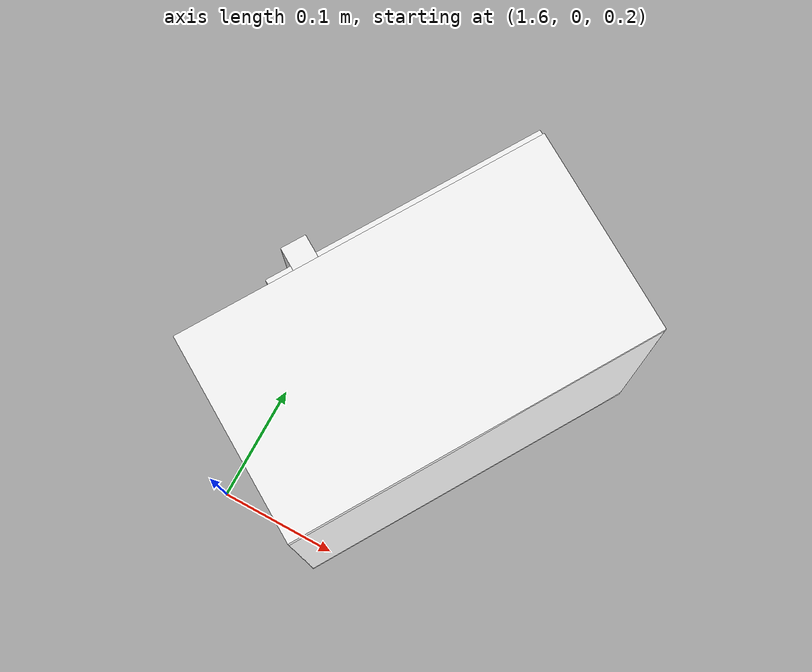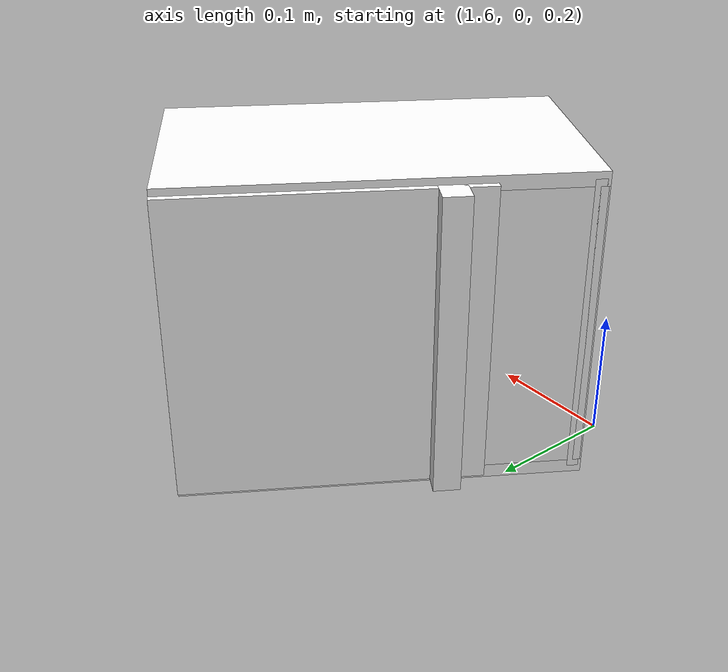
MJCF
<mujoco model="cabinet">
    <compiler angle="radian" eulerseq='zxy' />
    <option gravity = "0 0 0" />
    <option>
        <flag contact = "disable"/>
    </option>
    <statistic	extent="1.0" center="0.0 0.0 0.0"/>
    <visual>
        <map fogstart="3" fogend="5" force="0.1" znear=" 0.100000 " zfar=" 12.000000 "/>
    </visual>
    <size njmax="500" nconmax="100" />
    <actuator>
        <velocity joint="bottom_left_hinge" name="viva_revolution" kv='10'></velocity>
    </actuator>
    <asset>
        <texture builtin="flat" name="tabletex" height="32" width="32" rgb1="1 1 1" type="cube"></texture>
        <texture builtin="flat" name="objtex" height="32" width="32" rgb1="1 1 1" type="cube"></texture>
        <texture builtin="flat" name="handletex" height="32" width="32" rgb1="1 1 1" type="cube"></texture>
        <texture builtin="flat" name="wallpaper" height="32" width="32" rgb1="1 0 0" type="cube"></texture>
        <texture builtin="flat" name="kp" height="32" width="32" rgb1="1 1 1" type="cube"></texture>
        <material name="geomTable" shininess="0.03" specular="0.75" texture="tabletex"></material>
        <material name="geomObj" shininess="0.03" specular="0.75" texture="objtex"></material>
        <material name="geomHandle" shininess="0.03" specular="0.75" texture="handletex"></material>
        <material name="ax" shininess="0.03" specular="0.75" texture="wallpaper"></material>
        <material name="bg" shininess="0.03" specular="0.75" texture="wallpaper"></material>
        <material name="geomKeypad" shininess="0.03" specular="0.75" texture="kp"></material>
    </asset>
    <worldbody>
        <body name="cabinet_bottom" pos= " 1.703294 0.149453 0.217659 "  quat= " 0.271206 0.000000 0.000000 0.962521" >
            <inertial pos="0 0 0" mass="1" diaginertia="1 1 1" />
            <geom size= " 0.081645 0.147819 0.005211 "  type="box" material="geomObj" name="b"/>
            <body name="cabinet_left" pos= " 0.000000 -0.142608 0.113546 " >
                <inertial pos="0 0 0" mass="1" diaginertia="1 1 1" />
                <geom size= " 0.081645 0.005211 0.113546 "  type="box" material="geomObj" name="c" />
            </body>
            <body name="cabinet_right" pos= " 0.000000 0.142608 0.113546 " >
                <inertial pos="0 0 0" mass="1" diaginertia="1 1 1" />
                <geom size= " 0.081645 0.005211 0.113546 "  type="box" material="geomObj" name="d" />
            </body>
            <body name="cabinet_top" pos= " 0.000000 0.000000 0.227093 " >
                <inertial pos="0 0 0" mass="1" diaginertia="1 1 1" />
                <geom size= " 0.081645 0.147819 0.005211 "  type="box" material="geomObj" name="e"/>
            </body>
            <body name="cabinet_back" pos= " -0.076434 0.000000 0.113546 "  >
                <inertial pos="0 0 0" mass="1" diaginertia="1 1 1" />
                <geom size= " 0.005211 0.147819 0.113546 "  type="box" material="geomObj" name="f" />
            </body>
            <body name="cabinet_keypad" pos= " 0.005211 0.109864 0.113546 " >
                <inertial pos="0 0 0" mass="1" diaginertia="1 1 1" />
                <geom size= " 0.076434 0.036955 0.108335 "  type="box" material="geomKeypad" name="keypizzlemynizzle" />
            </body>
            <body name="cabinet_left_hinge" pos= " 0.081645 -0.147819 0.113546 " >
                <inertial pos= " 0.000000 0.110864 0.000000 "  mass="1" diaginertia="1 1 1" />
                <joint name="bottom_left_hinge" type="hinge" pos="0 0 0" axis="0 0 1" limited="true" range= "-2.3 0"  />
                <geom size= " 0.005211 0.110864 0.113546 "  pos= " 0.000000 0.110864 0.000000 "  type="box" material="geomObj" name="g"/>
                <body name="handle_link" pos= " 0.010000 0.191729 0.000000 " >
                    <inertial pos="0 0 0" mass="1" diaginertia="1 1 1" />
                    <geom size= " 0.010000 0.010000 0.113546 "  type="box" material="geomHandle" name="h"/>
                </body>
            </body>
        </body>
        <body name="external_camera_body_0" pos="0.0 0 0.00" >
            <camera euler="-1.57 1.57 0.0" fovy=" 54.280851 " name="external_camera_0" pos="0.0 0 0"></camera>
            <inertial pos= " 0.00 0.0 0.000000 " mass="1" diaginertia="1 1 1" />
            <joint name="cam_j" pos="0.0 0 0" axis = "1 0 0" type="free" />
        </body>
    </worldbody>
</mujoco>
